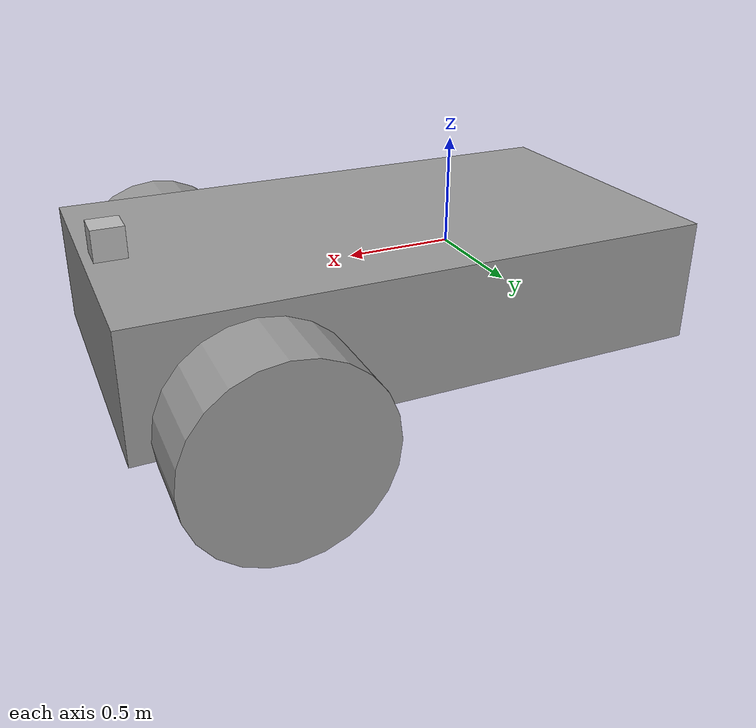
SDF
<?xml version='1.0'?>
<sdf version='1.6'>
  <model name='my_vehicle'>
    <link name='link_0'>
      <inertial>
        <mass>0.738896</mass>
        <inertia>
          <ixx>0.071389</ixx>
          <ixy>0</ixy>
          <ixz>0</ixz>
          <iyy>0.219065</iyy>
          <iyz>0</iyz>
          <izz>0.270631</izz>
        </inertia>
        <pose frame=''>0 0 0 0 -0 0</pose>
      </inertial>
      <pose frame=''>0.853814 0.987316 0.373597 0 -0 0</pose>
      <gravity>1</gravity>
      <self_collide>0</self_collide>
      <kinematic>0</kinematic>
      <enable_wind>0</enable_wind>
      <visual name='visual'>
        <pose frame=''>0 0 0 0 -0 0</pose>
        <geometry>
          <box>
            <size>1.84303 0.999208 0.401214</size>
          </box>
        </geometry>
        <material>
          <lighting>1</lighting>
          <script>
            <uri>file://media/materials/scripts/gazebo.material</uri>
            <name>Gazebo/Grey</name>
          </script>
          <shader type='vertex'>
            <normal_map>__default__</normal_map>
          </shader>
          <ambient>0.3 0.3 0.3 1</ambient>
          <diffuse>0.7 0.7 0.7 1</diffuse>
          <specular>0.01 0.01 0.01 1</specular>
          <emissive>0 0 0 1</emissive>
        </material>
        <transparency>0</transparency>
        <cast_shadows>1</cast_shadows>
      </visual>
      <collision name='collision'>
        <laser_retro>0</laser_retro>
        <max_contacts>10</max_contacts>
        <pose frame=''>0 0 0 0 -0 0</pose>
        <geometry>
          <box>
            <size>1.84303 0.999208 0.401214</size>
          </box>
        </geometry>
        <surface>
          <friction>
            <ode>
              <mu>1</mu>
              <mu2>1</mu2>
              <fdir1>0 0 0</fdir1>
              <slip1>0</slip1>
              <slip2>0</slip2>
            </ode>
            <torsional>
              <coefficient>1</coefficient>
              <patch_radius>0</patch_radius>
              <surface_radius>0</surface_radius>
              <use_patch_radius>1</use_patch_radius>
              <ode>
                <slip>0</slip>
              </ode>
            </torsional>
          </friction>
          <bounce>
            <restitution_coefficient>0</restitution_coefficient>
            <threshold>1e+06</threshold>
          </bounce>
          <contact>
            <collide_without_contact>0</collide_without_contact>
            <collide_without_contact_bitmask>1</collide_without_contact_bitmask>
            <collide_bitmask>1</collide_bitmask>
            <ode>
              <soft_cfm>0</soft_cfm>
              <soft_erp>0.2</soft_erp>
              <kp>1e+13</kp>
              <kd>1</kd>
              <max_vel>0.01</max_vel>
              <min_depth>0</min_depth>
            </ode>
            <bullet>
              <split_impulse>1</split_impulse>
              <split_impulse_penetration_threshold>-0.01</split_impulse_penetration_threshold>
              <soft_cfm>0</soft_cfm>
              <soft_erp>0.2</soft_erp>
              <kp>1e+13</kp>
              <kd>1</kd>
            </bullet>
          </contact>
        </surface>
      </collision>
    </link>
    <link name='link_1'>
      <inertial>
        <mass>1</mass>
        <inertia>
          <ixx>0.145833</ixx>
          <ixy>0</ixy>
          <ixz>0</ixz>
          <iyy>0.145833</iyy>
          <iyz>0</iyz>
          <izz>0.125</izz>
        </inertia>
        <pose frame=''>0 0 0 0 -0 0</pose>
      </inertial>
      <pose frame=''>1.41386 1.63991 0.251375 1.5707 -0 0</pose>
      <gravity>1</gravity>
      <self_collide>0</self_collide>
      <kinematic>0</kinematic>
      <enable_wind>0</enable_wind>
      <visual name='visual'>
        <pose frame=''>0 0 0 0 -0 0</pose>
        <geometry>
          <cylinder>
            <radius>0.3</radius>
            <length>0.25</length>
          </cylinder>
        </geometry>
        <material>
          <lighting>1</lighting>
          <script>
            <uri>file://media/materials/scripts/gazebo.material</uri>
            <name>Gazebo/Grey</name>
          </script>
          <shader type='vertex'>
            <normal_map>__default__</normal_map>
          </shader>
          <ambient>0.3 0.3 0.3 1</ambient>
          <diffuse>0.7 0.7 0.7 1</diffuse>
          <specular>0.01 0.01 0.01 1</specular>
          <emissive>0 0 0 1</emissive>
        </material>
        <transparency>0</transparency>
        <cast_shadows>1</cast_shadows>
      </visual>
      <collision name='collision'>
        <laser_retro>0</laser_retro>
        <max_contacts>10</max_contacts>
        <pose frame=''>0 0 0 0 -0 0</pose>
        <geometry>
          <cylinder>
            <radius>0.3</radius>
            <length>0.25</length>
          </cylinder>
        </geometry>
        <surface>
          <friction>
            <ode>
              <mu>1</mu>
              <mu2>1</mu2>
              <fdir1>0 0 0</fdir1>
              <slip1>0</slip1>
              <slip2>0</slip2>
            </ode>
            <torsional>
              <coefficient>1</coefficient>
              <patch_radius>0</patch_radius>
              <surface_radius>0</surface_radius>
              <use_patch_radius>1</use_patch_radius>
              <ode>
                <slip>0</slip>
              </ode>
            </torsional>
          </friction>
          <bounce>
            <restitution_coefficient>0</restitution_coefficient>
            <threshold>1e+06</threshold>
          </bounce>
          <contact>
            <collide_without_contact>0</collide_without_contact>
            <collide_without_contact_bitmask>1</collide_without_contact_bitmask>
            <collide_bitmask>1</collide_bitmask>
            <ode>
              <soft_cfm>0</soft_cfm>
              <soft_erp>0.2</soft_erp>
              <kp>1e+13</kp>
              <kd>1</kd>
              <max_vel>0.01</max_vel>
              <min_depth>0</min_depth>
            </ode>
            <bullet>
              <split_impulse>1</split_impulse>
              <split_impulse_penetration_threshold>-0.01</split_impulse_penetration_threshold>
              <soft_cfm>0</soft_cfm>
              <soft_erp>0.2</soft_erp>
              <kp>1e+13</kp>
              <kd>1</kd>
            </bullet>
          </contact>
        </surface>
      </collision>
    </link>
    <link name='link_1_clone'>
      <inertial>
        <mass>1</mass>
        <inertia>
          <ixx>0.145833</ixx>
          <ixy>0</ixy>
          <ixz>0</ixz>
          <iyy>0.145833</iyy>
          <iyz>0</iyz>
          <izz>0.125</izz>
        </inertia>
        <pose frame=''>0 0 0 0 -0 0</pose>
      </inertial>
      <pose frame=''>1.41301 0.376218 0.251375 1.5707 -0 0</pose>
      <gravity>1</gravity>
      <self_collide>0</self_collide>
      <kinematic>0</kinematic>
      <enable_wind>0</enable_wind>
      <visual name='visual'>
        <pose frame=''>0 0 0 0 -0 0</pose>
        <geometry>
          <cylinder>
            <radius>0.3</radius>
            <length>0.25</length>
          </cylinder>
        </geometry>
        <material>
          <lighting>1</lighting>
          <script>
            <uri>file://media/materials/scripts/gazebo.material</uri>
            <name>Gazebo/Grey</name>
          </script>
          <shader type='vertex'>
            <normal_map>__default__</normal_map>
          </shader>
          <ambient>0.3 0.3 0.3 1</ambient>
          <diffuse>0.7 0.7 0.7 1</diffuse>
          <specular>0.01 0.01 0.01 1</specular>
          <emissive>0 0 0 1</emissive>
        </material>
        <transparency>0</transparency>
        <cast_shadows>1</cast_shadows>
      </visual>
      <collision name='collision'>
        <laser_retro>0</laser_retro>
        <max_contacts>10</max_contacts>
        <pose frame=''>0 0 0 0 -0 0</pose>
        <geometry>
          <cylinder>
            <radius>0.3</radius>
            <length>0.25</length>
          </cylinder>
        </geometry>
        <surface>
          <friction>
            <ode>
              <mu>1</mu>
              <mu2>1</mu2>
              <fdir1>0 0 0</fdir1>
              <slip1>0</slip1>
              <slip2>0</slip2>
            </ode>
            <torsional>
              <coefficient>1</coefficient>
              <patch_radius>0</patch_radius>
              <surface_radius>0</surface_radius>
              <use_patch_radius>1</use_patch_radius>
              <ode>
                <slip>0</slip>
              </ode>
            </torsional>
          </friction>
          <bounce>
            <restitution_coefficient>0</restitution_coefficient>
            <threshold>1e+06</threshold>
          </bounce>
          <contact>
            <collide_without_contact>0</collide_without_contact>
            <collide_without_contact_bitmask>1</collide_without_contact_bitmask>
            <collide_bitmask>1</collide_bitmask>
            <ode>
              <soft_cfm>0</soft_cfm>
              <soft_erp>0.2</soft_erp>
              <kp>1e+13</kp>
              <kd>1</kd>
              <max_vel>0.01</max_vel>
              <min_depth>0</min_depth>
            </ode>
            <bullet>
              <split_impulse>1</split_impulse>
              <split_impulse_penetration_threshold>-0.01</split_impulse_penetration_threshold>
              <soft_cfm>0</soft_cfm>
              <soft_erp>0.2</soft_erp>
              <kp>1e+13</kp>
              <kd>1</kd>
            </bullet>
          </contact>
        </surface>
      </collision>
    </link>
    <link name='link_3'>
      <inertial>
        <mass>1</mass>
        <inertia>
          <ixx>0.1</ixx>
          <ixy>0</ixy>
          <ixz>0</ixz>
          <iyy>0.1</iyy>
          <iyz>0</iyz>
          <izz>0.1</izz>
        </inertia>
        <pose frame=''>0 0 0 0 -0 0</pose>
      </inertial>
      <pose frame=''>0.132298 0.987316 0.2 0 -0 0</pose>
      <gravity>1</gravity>
      <self_collide>0</self_collide>
      <kinematic>0</kinematic>
      <enable_wind>0</enable_wind>
      <visual name='visual'>
        <pose frame=''>0 0 0 0 -0 0</pose>
        <geometry>
          <sphere>
            <radius>0.2</radius>
          </sphere>
        </geometry>
        <material>
          <lighting>1</lighting>
          <script>
            <uri>file://media/materials/scripts/gazebo.material</uri>
            <name>Gazebo/Grey</name>
          </script>
          <shader type='vertex'>
            <normal_map>__default__</normal_map>
          </shader>
          <ambient>0.3 0.3 0.3 1</ambient>
          <diffuse>0.7 0.7 0.7 1</diffuse>
          <specular>0.01 0.01 0.01 1</specular>
          <emissive>0 0 0 1</emissive>
        </material>
        <transparency>0</transparency>
        <cast_shadows>1</cast_shadows>
      </visual>
      <collision name='collision'>
        <laser_retro>0</laser_retro>
        <max_contacts>10</max_contacts>
        <pose frame=''>0 0 0 0 -0 0</pose>
        <geometry>
          <sphere>
            <radius>0.2</radius>
          </sphere>
        </geometry>
        <surface>
          <friction>
            <ode>
              <mu>1</mu>
              <mu2>1</mu2>
              <fdir1>0 0 0</fdir1>
              <slip1>0</slip1>
              <slip2>0</slip2>
            </ode>
            <torsional>
              <coefficient>1</coefficient>
              <patch_radius>0</patch_radius>
              <surface_radius>0</surface_radius>
              <use_patch_radius>1</use_patch_radius>
              <ode>
                <slip>0</slip>
              </ode>
            </torsional>
          </friction>
          <bounce>
            <restitution_coefficient>0</restitution_coefficient>
            <threshold>1e+06</threshold>
          </bounce>
          <contact>
            <collide_without_contact>0</collide_without_contact>
            <collide_without_contact_bitmask>1</collide_without_contact_bitmask>
            <collide_bitmask>1</collide_bitmask>
            <ode>
              <soft_cfm>0</soft_cfm>
              <soft_erp>0.2</soft_erp>
              <kp>1e+13</kp>
              <kd>1</kd>
              <max_vel>0.01</max_vel>
              <min_depth>0</min_depth>
            </ode>
            <bullet>
              <split_impulse>1</split_impulse>
              <split_impulse_penetration_threshold>-0.01</split_impulse_penetration_threshold>
              <soft_cfm>0</soft_cfm>
              <soft_erp>0.2</soft_erp>
              <kp>1e+13</kp>
              <kd>1</kd>
            </bullet>
          </contact>
        </surface>
      </collision>
    </link>
    <model name='depth_camera'>
      <link name='link'>
        <pose frame=''>0 0 0.05 0 -0 0</pose>
        <inertial>
          <mass>0.1</mass>
          <inertia>
            <ixx>0.000166667</ixx>
            <iyy>0.000166667</iyy>
            <izz>0.000166667</izz>
            <ixy>0</ixy>
            <ixz>0</ixz>
            <iyz>0</iyz>
          </inertia>
        </inertial>
        <collision name='collision'>
          <geometry>
            <box>
              <size>0.1 0.1 0.1</size>
            </box>
          </geometry>
        </collision>
        <visual name='visual'>
          <geometry>
            <box>
              <size>0.1 0.1 0.1</size>
            </box>
          </geometry>
        </visual>
        <sensor name='camera' type='depth'>
          <camera name='__default__'>
            <horizontal_fov>1.047</horizontal_fov>
            <image>
              <width>320</width>
              <height>240</height>
            </image>
            <clip>
              <near>0.1</near>
              <far>100</far>
            </clip>
          </camera>
          <always_on>1</always_on>
          <update_rate>30</update_rate>
          <visualize>1</visualize>
        </sensor>
      </link>
      <pose frame=''>1.6962 0.982526 0.573967 0 -0 0</pose>
    </model>
    <joint name='link_0_JOINT_0' type='revolute'>
      <parent>link_0</parent>
      <child>link_1</child>
      <pose frame=''>0 0 0 0 -0 0</pose>
      <axis>
        <xyz>0 0 1</xyz>
        <use_parent_model_frame>0</use_parent_model_frame>
        <limit>
          <lower>-1.79769e+308</lower>
          <upper>1.79769e+308</upper>
          <effort>-1</effort>
          <velocity>-1</velocity>
        </limit>
        <dynamics>
          <spring_reference>0</spring_reference>
          <spring_stiffness>0</spring_stiffness>
          <damping>0</damping>
          <friction>0</friction>
        </dynamics>
      </axis>
      <physics>
        <ode>
          <limit>
            <cfm>0</cfm>
            <erp>0.2</erp>
          </limit>
          <suspension>
            <cfm>0</cfm>
            <erp>0.2</erp>
          </suspension>
        </ode>
      </physics>
    </joint>
    <joint name='link_0_JOINT_1' type='revolute'>
      <parent>link_0</parent>
      <child>link_1_clone</child>
      <pose frame=''>0 0 0 0 -0 0</pose>
      <axis>
        <xyz>0 0 1</xyz>
        <use_parent_model_frame>0</use_parent_model_frame>
        <limit>
          <lower>-1.79769e+308</lower>
          <upper>1.79769e+308</upper>
          <effort>-1</effort>
          <velocity>-1</velocity>
        </limit>
        <dynamics>
          <spring_reference>0</spring_reference>
          <spring_stiffness>0</spring_stiffness>
          <damping>0</damping>
          <friction>0</friction>
        </dynamics>
      </axis>
      <physics>
        <ode>
          <limit>
            <cfm>0</cfm>
            <erp>0.2</erp>
          </limit>
          <suspension>
            <cfm>0</cfm>
            <erp>0.2</erp>
          </suspension>
        </ode>
      </physics>
    </joint>
    <joint name='link_0_JOINT_4' type='ball'>
      <parent>link_0</parent>
      <child>link_3</child>
      <pose frame=''>0 0 0 0 -0 0</pose>
      <physics>
        <ode>
          <limit>
            <cfm>0</cfm>
            <erp>0.2</erp>
          </limit>
          <suspension>
            <cfm>0</cfm>
            <erp>0.2</erp>
          </suspension>
        </ode>
      </physics>
    </joint>
    <joint name='link_0_JOINT_8' type='fixed'>
      <parent>link_0</parent>
      <child>depth_camera::link</child>
      <pose frame=''>0 0 0 0 -0 0</pose>
      <physics>
        <ode>
          <limit>
            <cfm>0</cfm>
            <erp>0.2</erp>
          </limit>
          <suspension>
            <cfm>0</cfm>
            <erp>0.2</erp>
          </suspension>
        </ode>
      </physics>
    </joint>
    <static>0</static>
    <allow_auto_disable>1</allow_auto_disable>
    <plugin name='follower' filename='libFollowerPlugin.so'/>
  </model>
</sdf>
